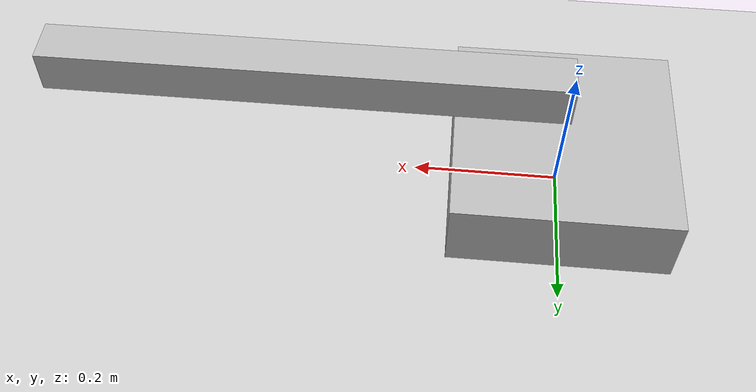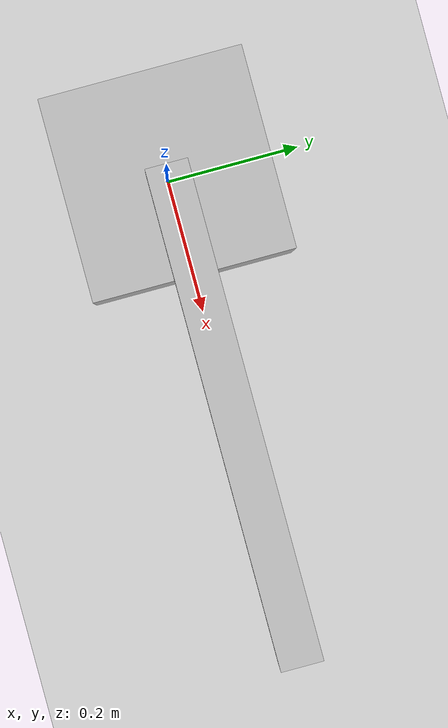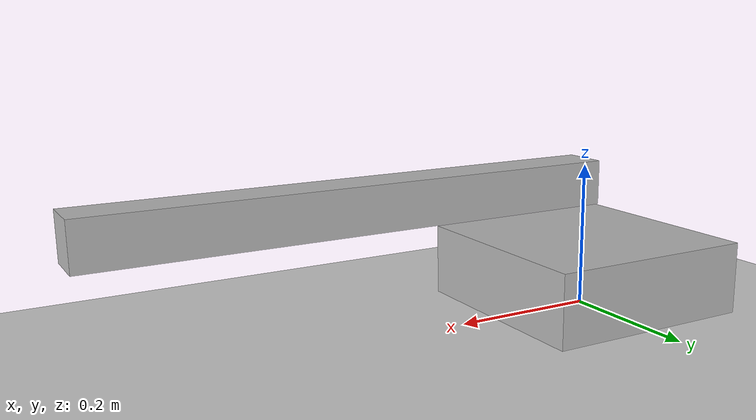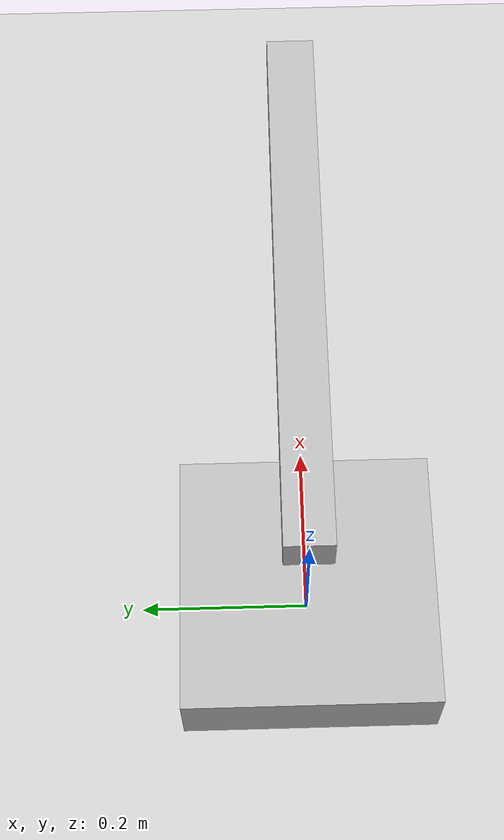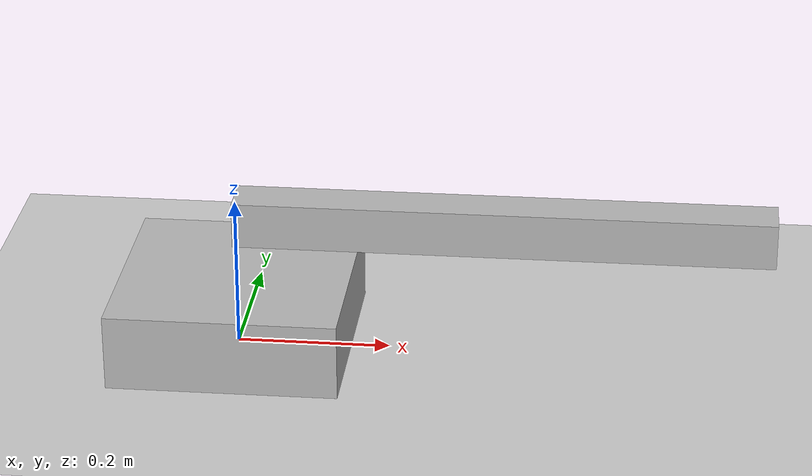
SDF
<?xml version="1.0"?>
<sdf version="1.6">
  <world name="two_joint_arm_smoke_world">
    <include>
      <uri>model://sun</uri>
    </include>
    <include>
      <uri>model://ground_plane</uri>
    </include>

    <model name="two_joint_arm_placeholder">
      <pose>0 0 0 0 0 0</pose>
      <link name="base_link">
        <pose>0 0 0.05 0 0 0</pose>
        <visual name="base_visual">
          <geometry>
            <box>
              <size>0.30 0.30 0.10</size>
            </box>
          </geometry>
        </visual>
        <collision name="base_collision">
          <geometry>
            <box>
              <size>0.30 0.30 0.10</size>
            </box>
          </geometry>
        </collision>
      </link>
      <link name="arm_link">
        <pose>0.35 0 0.18 0 0 0</pose>
        <visual name="arm_visual">
          <geometry>
            <box>
              <size>0.70 0.06 0.06</size>
            </box>
          </geometry>
        </visual>
      </link>
      <joint name="base_to_arm_fixed" type="fixed">
        <parent>base_link</parent>
        <child>arm_link</child>
      </joint>
    </model>
  </world>
</sdf>
